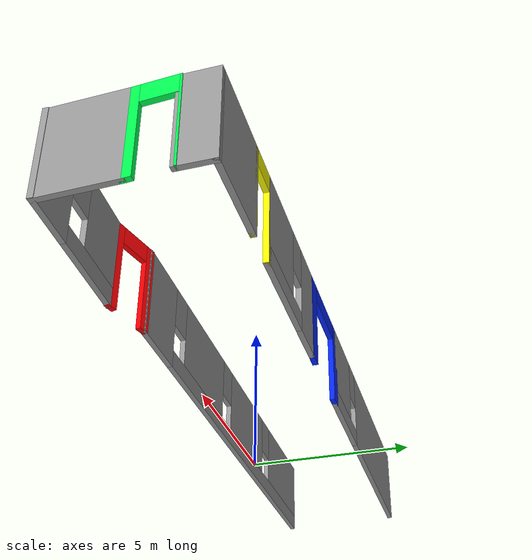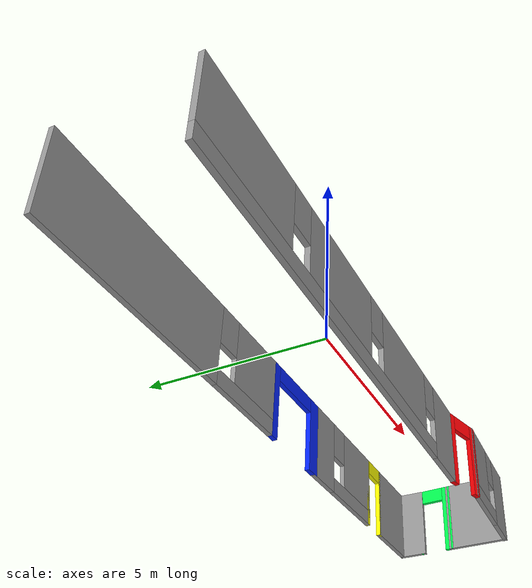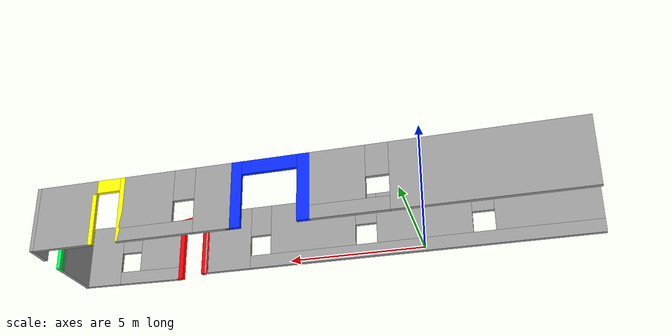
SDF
<?xml version='1.0'?>
<sdf version='1.6'>
  <model name='corridor_with_collored_doors'>
    <pose frame=''>3.80119 1.38394 0 0 -0 0</pose>
    <link name='Wall_24'>
      <pose frame=''>-5.09322 2.0503 0 0 -0 0</pose>
      <visual name='Wall_24_Visual_0'>
        <pose frame=''>-1.4449 0 1.25 0 -0 0</pose>
        <geometry>
          <box>
            <size>6.6102 0.15 2.5</size>
          </box>
        </geometry>
        <material>
          <script>
            <uri>file://media/materials/scripts/gazebo.material</uri>
            <name>Gazebo/Grey</name>
          </script>
          <ambient>1 1 1 1</ambient>
        </material>
      </visual>
      <collision name='Wall_24_Collision_0'>
        <geometry>
          <box>
            <size>6.6102 0.15 2.5</size>
          </box>
        </geometry>
        <pose frame=''>-1.4449 0 1.25 0 -0 0</pose>
      </collision>
      <visual name='Wall_24_Visual_1'>
        <pose frame=''>3.3051 0 0.25 0 -0 0</pose>
        <geometry>
          <box>
            <size>2.8898 0.15 0.5</size>
          </box>
        </geometry>
        <material>
          <script>
            <uri>file://media/materials/scripts/gazebo.material</uri>
            <name>Gazebo/Grey</name>
          </script>
          <ambient>1 1 1 1</ambient>
        </material>
      </visual>
      <collision name='Wall_24_Collision_1'>
        <geometry>
          <box>
            <size>2.8898 0.15 0.5</size>
          </box>
        </geometry>
        <pose frame=''>3.3051 0 0.25 0 -0 0</pose>
      </collision>
      <visual name='Wall_24_Visual_2'>
        <pose frame=''>3.7051 0 1.5 0 -0 0</pose>
        <geometry>
          <box>
            <size>2.0898 0.15 2</size>
          </box>
        </geometry>
        <material>
          <script>
            <uri>file://media/materials/scripts/gazebo.material</uri>
            <name>Gazebo/Grey</name>
          </script>
          <ambient>1 1 1 1</ambient>
        </material>
      </visual>
      <collision name='Wall_24_Collision_2'>
        <geometry>
          <box>
            <size>2.0898 0.15 2</size>
          </box>
        </geometry>
        <pose frame=''>3.7051 0 1.5 0 -0 0</pose>
      </collision>
      <visual name='Wall_24_Visual_3'>
        <pose frame=''>2.2602 0 1.9 0 -0 0</pose>
        <geometry>
          <box>
            <size>0.8 0.15 1.2</size>
          </box>
        </geometry>
        <material>
          <script>
            <uri>file://media/materials/scripts/gazebo.material</uri>
            <name>Gazebo/Grey</name>
          </script>
          <ambient>1 1 1 1</ambient>
        </material>
      </visual>
      <collision name='Wall_24_Collision_3'>
        <geometry>
          <box>
            <size>0.8 0.15 1.2</size>
          </box>
        </geometry>
        <pose frame=''>2.2602 0 1.9 0 -0 0</pose>
      </collision>
    </link>
    <link name='Wall_25'>
      <pose frame=''>0.995216 2.0503 0 0 -0 0</pose>
      <visual name='Wall_25_Visual_0'>
        <pose frame=''>-1.26541 0 1.25 0 -0 0</pose>
        <geometry>
          <box>
            <size>0.446054 0.15 2.5</size>
          </box>
        </geometry>
        <material>
          <script>
            <uri>file://media/materials/scripts/gazebo.material</uri>
            <name>Gazebo/Grey</name>
          </script>
          <ambient>0.0235294 0.152941 1 1</ambient>
        </material>
      </visual>
      <collision name='Wall_25_Collision_0'>
        <geometry>
          <box>
            <size>0.446054 0.15 2.5</size>
          </box>
        </geometry>
        <pose frame=''>-1.26541 0 1.25 0 -0 0</pose>
      </collision>
      <visual name='Wall_25_Visual_1'>
        <pose frame=''>1.22303 0 1.25 0 -0 0</pose>
        <geometry>
          <box>
            <size>0.530816 0.15 2.5</size>
          </box>
        </geometry>
        <material>
          <script>
            <uri>file://media/materials/scripts/gazebo.material</uri>
            <name>Gazebo/Grey</name>
          </script>
          <ambient>0.0235294 0.152941 1 1</ambient>
        </material>
      </visual>
      <collision name='Wall_25_Collision_1'>
        <geometry>
          <box>
            <size>0.530816 0.15 2.5</size>
          </box>
        </geometry>
        <pose frame=''>1.22303 0 1.25 0 -0 0</pose>
      </collision>
      <visual name='Wall_25_Visual_2'>
        <pose frame=''>-0.042381 0 2.25 0 -0 0</pose>
        <geometry>
          <box>
            <size>2 0.15 0.5</size>
          </box>
        </geometry>
        <material>
          <script>
            <uri>file://media/materials/scripts/gazebo.material</uri>
            <name>Gazebo/Grey</name>
          </script>
          <ambient>0.0235294 0.152941 1 1</ambient>
        </material>
      </visual>
      <collision name='Wall_25_Collision_2'>
        <geometry>
          <box>
            <size>2 0.15 0.5</size>
          </box>
        </geometry>
        <pose frame=''>-0.042381 0 2.25 0 -0 0</pose>
      </collision>
    </link>
    <link name='Wall_28'>
      <collision name='Wall_28_Collision'>
        <geometry>
          <box>
            <size>1 0.15 2.5</size>
          </box>
        </geometry>
        <pose frame=''>0 0 1.25 0 -0 0</pose>
      </collision>
      <visual name='Wall_28_Visual'>
        <pose frame=''>0 0 1.25 0 -0 0</pose>
        <geometry>
          <box>
            <size>1 0.15 2.5</size>
          </box>
        </geometry>
        <material>
          <script>
            <uri>file://media/materials/scripts/gazebo.material</uri>
            <name>Gazebo/Grey</name>
          </script>
          <ambient>1 1 1 1</ambient>
        </material>
      </visual>
      <pose frame=''>9.92201 1.6253 0 0 0 -1.5708</pose>
    </link>
    <link name='Wall_29'>
      <pose frame=''>9.91195 0.650305 0 0 0 -1.6256</pose>
      <visual name='Wall_29_Visual_0'>
        <pose frame=''>-0.597989 0 1.25 0 -0 0</pose>
        <geometry>
          <box>
            <size>0.055676 0.15 2.5</size>
          </box>
        </geometry>
        <material>
          <script>
            <uri>file://media/materials/scripts/gazebo.material</uri>
            <name>Gazebo/Grey</name>
          </script>
          <ambient>0 1 0.317647 1</ambient>
        </material>
      </visual>
      <collision name='Wall_29_Collision_0'>
        <geometry>
          <box>
            <size>0.055676 0.15 2.5</size>
          </box>
        </geometry>
        <pose frame=''>-0.597989 0 1.25 0 -0 0</pose>
      </collision>
      <visual name='Wall_29_Visual_1'>
        <pose frame=''>0.477838 0 1.25 0 -0 0</pose>
        <geometry>
          <box>
            <size>0.295978 0.15 2.5</size>
          </box>
        </geometry>
        <material>
          <script>
            <uri>file://media/materials/scripts/gazebo.material</uri>
            <name>Gazebo/Grey</name>
          </script>
          <ambient>0 1 0.317647 1</ambient>
        </material>
      </visual>
      <collision name='Wall_29_Collision_1'>
        <geometry>
          <box>
            <size>0.295978 0.15 2.5</size>
          </box>
        </geometry>
        <pose frame=''>0.477838 0 1.25 0 -0 0</pose>
      </collision>
      <visual name='Wall_29_Visual_2'>
        <pose frame=''>-0.120151 0 2.25 0 -0 0</pose>
        <geometry>
          <box>
            <size>0.9 0.15 0.5</size>
          </box>
        </geometry>
        <material>
          <script>
            <uri>file://media/materials/scripts/gazebo.material</uri>
            <name>Gazebo/Grey</name>
          </script>
          <ambient>0 1 0.317647 1</ambient>
        </material>
      </visual>
      <collision name='Wall_29_Collision_2'>
        <geometry>
          <box>
            <size>0.9 0.15 0.5</size>
          </box>
        </geometry>
        <pose frame=''>-0.120151 0 2.25 0 -0 0</pose>
      </collision>
    </link>
    <link name='Wall_30'>
      <collision name='Wall_30_Collision'>
        <geometry>
          <box>
            <size>2.13797 0.15 2.5</size>
          </box>
        </geometry>
        <pose frame=''>0 0 1.25 0 -0 0</pose>
      </collision>
      <visual name='Wall_30_Visual'>
        <pose frame=''>0 0 1.25 0 -0 0</pose>
        <geometry>
          <box>
            <size>2.13797 0.15 2.5</size>
          </box>
        </geometry>
        <material>
          <script>
            <uri>file://media/materials/scripts/gazebo.material</uri>
            <name>Gazebo/Grey</name>
          </script>
          <ambient>1 1 1 1</ambient>
        </material>
      </visual>
      <pose frame=''>9.85865 -0.893613 0 0 0 -1.59406</pose>
    </link>
    <link name='Wall_31'>
      <pose frame=''>7.91269 -1.96049 0 0 0 -3.10412</pose>
      <visual name='Wall_31_Visual_0'>
        <pose frame=''>-1.26145 0 1.25 0 -0 0</pose>
        <geometry>
          <box>
            <size>1.52175 0.15 2.5</size>
          </box>
        </geometry>
        <material>
          <script>
            <uri>file://media/materials/scripts/gazebo.material</uri>
            <name>Gazebo/Grey</name>
          </script>
          <ambient>1 1 1 1</ambient>
        </material>
      </visual>
      <collision name='Wall_31_Collision_0'>
        <geometry>
          <box>
            <size>1.52175 0.15 2.5</size>
          </box>
        </geometry>
        <pose frame=''>-1.26145 0 1.25 0 -0 0</pose>
      </collision>
      <visual name='Wall_31_Visual_1'>
        <pose frame=''>0.760874 0 0.25 0 -0 0</pose>
        <geometry>
          <box>
            <size>2.52291 0.15 0.5</size>
          </box>
        </geometry>
        <material>
          <script>
            <uri>file://media/materials/scripts/gazebo.material</uri>
            <name>Gazebo/Grey</name>
          </script>
          <ambient>1 1 1 1</ambient>
        </material>
      </visual>
      <collision name='Wall_31_Collision_1'>
        <geometry>
          <box>
            <size>2.52291 0.15 0.5</size>
          </box>
        </geometry>
        <pose frame=''>0.760874 0 0.25 0 -0 0</pose>
      </collision>
      <visual name='Wall_31_Visual_2'>
        <pose frame=''>1.16087 0 1.5 0 -0 0</pose>
        <geometry>
          <box>
            <size>1.7229 0.15 2</size>
          </box>
        </geometry>
        <material>
          <script>
            <uri>file://media/materials/scripts/gazebo.material</uri>
            <name>Gazebo/Grey</name>
          </script>
          <ambient>1 1 1 1</ambient>
        </material>
      </visual>
      <collision name='Wall_31_Collision_2'>
        <geometry>
          <box>
            <size>1.7229 0.15 2</size>
          </box>
        </geometry>
        <pose frame=''>1.16087 0 1.5 0 -0 0</pose>
      </collision>
      <visual name='Wall_31_Visual_3'>
        <pose frame=''>-0.100578 0 1.9 0 -0 0</pose>
        <geometry>
          <box>
            <size>0.8 0.15 1.2</size>
          </box>
        </geometry>
        <material>
          <script>
            <uri>file://media/materials/scripts/gazebo.material</uri>
            <name>Gazebo/Grey</name>
          </script>
          <ambient>1 1 1 1</ambient>
        </material>
      </visual>
      <collision name='Wall_31_Collision_3'>
        <geometry>
          <box>
            <size>0.8 0.15 1.2</size>
          </box>
        </geometry>
        <pose frame=''>-0.100578 0 1.9 0 -0 0</pose>
      </collision>
    </link>
    <link name='Wall_32'>
      <pose frame=''>5.31473 -1.85875 0 0 -0 2.87979</pose>
      <visual name='Wall_32_Visual_0'>
        <pose frame=''>-0.601317 0 1.25 0 -0 0</pose>
        <geometry>
          <box>
            <size>0.297366 0.15 2.5</size>
          </box>
        </geometry>
        <material>
          <script>
            <uri>file://media/materials/scripts/gazebo.material</uri>
            <name>Gazebo/Grey</name>
          </script>
          <ambient>1 0 0.0156863 1</ambient>
        </material>
      </visual>
      <collision name='Wall_32_Collision_0'>
        <geometry>
          <box>
            <size>0.297366 0.15 2.5</size>
          </box>
        </geometry>
        <pose frame=''>-0.601317 0 1.25 0 -0 0</pose>
      </collision>
      <visual name='Wall_32_Visual_1'>
        <pose frame=''>0.598683 0 1.25 0 -0 0</pose>
        <geometry>
          <box>
            <size>0.302634 0.15 2.5</size>
          </box>
        </geometry>
        <material>
          <script>
            <uri>file://media/materials/scripts/gazebo.material</uri>
            <name>Gazebo/Grey</name>
          </script>
          <ambient>1 0 0.0156863 1</ambient>
        </material>
      </visual>
      <collision name='Wall_32_Collision_1'>
        <geometry>
          <box>
            <size>0.302634 0.15 2.5</size>
          </box>
        </geometry>
        <pose frame=''>0.598683 0 1.25 0 -0 0</pose>
      </collision>
      <visual name='Wall_32_Visual_2'>
        <pose frame=''>-0.002634 0 2.25 0 -0 0</pose>
        <geometry>
          <box>
            <size>0.9 0.15 0.5</size>
          </box>
        </geometry>
        <material>
          <script>
            <uri>file://media/materials/scripts/gazebo.material</uri>
            <name>Gazebo/Grey</name>
          </script>
          <ambient>1 0 0.0156863 1</ambient>
        </material>
      </visual>
      <collision name='Wall_32_Collision_2'>
        <geometry>
          <box>
            <size>0.9 0.15 0.5</size>
          </box>
        </geometry>
        <pose frame=''>-0.002634 0 2.25 0 -0 0</pose>
      </collision>
    </link>
    <link name='Wall_33'>
      <pose frame=''>-2.64153 -1.7164 0 0 0 -3.13716</pose>
      <visual name='Wall_33_Visual_0'>
        <pose frame=''>-6.45911 0 1.25 0 -0 0</pose>
        <geometry>
          <box>
            <size>1.84045 0.15 2.5</size>
          </box>
        </geometry>
        <material>
          <script>
            <uri>file://media/materials/scripts/gazebo.material</uri>
            <name>Gazebo/Grey</name>
          </script>
          <ambient>1 1 1 1</ambient>
        </material>
      </visual>
      <collision name='Wall_33_Collision_0'>
        <geometry>
          <box>
            <size>1.84045 0.15 2.5</size>
          </box>
        </geometry>
        <pose frame=''>-6.45911 0 1.25 0 -0 0</pose>
      </collision>
      <visual name='Wall_33_Visual_1'>
        <pose frame=''>0.920224 0 0.25 0 -0 0</pose>
        <geometry>
          <box>
            <size>12.9182 0.15 0.5</size>
          </box>
        </geometry>
        <material>
          <script>
            <uri>file://media/materials/scripts/gazebo.material</uri>
            <name>Gazebo/Grey</name>
          </script>
          <ambient>1 1 1 1</ambient>
        </material>
      </visual>
      <collision name='Wall_33_Collision_1'>
        <geometry>
          <box>
            <size>12.9182 0.15 0.5</size>
          </box>
        </geometry>
        <pose frame=''>0.920224 0 0.25 0 -0 0</pose>
      </collision>
      <visual name='Wall_33_Visual_2'>
        <pose frame=''>-3.0871 0 1.5 0 -0 0</pose>
        <geometry>
          <box>
            <size>3.30357 0.15 2</size>
          </box>
        </geometry>
        <material>
          <script>
            <uri>file://media/materials/scripts/gazebo.material</uri>
            <name>Gazebo/Grey</name>
          </script>
          <ambient>1 1 1 1</ambient>
        </material>
      </visual>
      <collision name='Wall_33_Collision_2'>
        <geometry>
          <box>
            <size>3.30357 0.15 2</size>
          </box>
        </geometry>
        <pose frame=''>-3.0871 0 1.5 0 -0 0</pose>
      </collision>
      <visual name='Wall_33_Visual_3'>
        <pose frame=''>1.11705 0 1.5 0 -0 0</pose>
        <geometry>
          <box>
            <size>3.50471 0.15 2</size>
          </box>
        </geometry>
        <material>
          <script>
            <uri>file://media/materials/scripts/gazebo.material</uri>
            <name>Gazebo/Grey</name>
          </script>
          <ambient>1 1 1 1</ambient>
        </material>
      </visual>
      <collision name='Wall_33_Collision_3'>
        <geometry>
          <box>
            <size>3.50471 0.15 2</size>
          </box>
        </geometry>
        <pose frame=''>1.11705 0 1.5 0 -0 0</pose>
      </collision>
      <visual name='Wall_33_Visual_4'>
        <pose frame=''>5.52437 0 1.5 0 -0 0</pose>
        <geometry>
          <box>
            <size>3.70993 0.15 2</size>
          </box>
        </geometry>
        <material>
          <script>
            <uri>file://media/materials/scripts/gazebo.material</uri>
            <name>Gazebo/Grey</name>
          </script>
          <ambient>1 1 1 1</ambient>
        </material>
      </visual>
      <collision name='Wall_33_Collision_4'>
        <geometry>
          <box>
            <size>3.70993 0.15 2</size>
          </box>
        </geometry>
        <pose frame=''>5.52437 0 1.5 0 -0 0</pose>
      </collision>
      <visual name='Wall_33_Visual_5'>
        <pose frame=''>-5.13888 0 1.9 0 -0 0</pose>
        <geometry>
          <box>
            <size>0.8 0.15 1.2</size>
          </box>
        </geometry>
        <material>
          <script>
            <uri>file://media/materials/scripts/gazebo.material</uri>
            <name>Gazebo/Grey</name>
          </script>
          <ambient>1 1 1 1</ambient>
        </material>
      </visual>
      <collision name='Wall_33_Collision_5'>
        <geometry>
          <box>
            <size>0.8 0.15 1.2</size>
          </box>
        </geometry>
        <pose frame=''>-5.13888 0 1.9 0 -0 0</pose>
      </collision>
      <visual name='Wall_33_Visual_6'>
        <pose frame=''>-1.03531 0 1.9 0 -0 0</pose>
        <geometry>
          <box>
            <size>0.8 0.15 1.2</size>
          </box>
        </geometry>
        <material>
          <script>
            <uri>file://media/materials/scripts/gazebo.material</uri>
            <name>Gazebo/Grey</name>
          </script>
          <ambient>1 1 1 1</ambient>
        </material>
      </visual>
      <collision name='Wall_33_Collision_6'>
        <geometry>
          <box>
            <size>0.8 0.15 1.2</size>
          </box>
        </geometry>
        <pose frame=''>-1.03531 0 1.9 0 -0 0</pose>
      </collision>
      <visual name='Wall_33_Visual_7'>
        <pose frame=''>3.2694 0 1.9 0 -0 0</pose>
        <geometry>
          <box>
            <size>0.8 0.15 1.2</size>
          </box>
        </geometry>
        <material>
          <script>
            <uri>file://media/materials/scripts/gazebo.material</uri>
            <name>Gazebo/Grey</name>
          </script>
          <ambient>1 1 1 1</ambient>
        </material>
      </visual>
      <collision name='Wall_33_Collision_7'>
        <geometry>
          <box>
            <size>0.8 0.15 1.2</size>
          </box>
        </geometry>
        <pose frame=''>3.2694 0 1.9 0 -0 0</pose>
      </collision>
    </link>
    <link name='Wall_35'>
      <pose frame=''>4.45865 2.0503 0 0 -0 0</pose>
      <visual name='Wall_35_Visual_0'>
        <pose frame=''>-1.4488 0 1.25 0 -0 0</pose>
        <geometry>
          <box>
            <size>1.3524 0.15 2.5</size>
          </box>
        </geometry>
        <material>
          <script>
            <uri>file://media/materials/scripts/gazebo.material</uri>
            <name>Gazebo/Grey</name>
          </script>
          <ambient>1 1 1 1</ambient>
        </material>
      </visual>
      <collision name='Wall_35_Collision_0'>
        <geometry>
          <box>
            <size>1.3524 0.15 2.5</size>
          </box>
        </geometry>
        <pose frame=''>-1.4488 0 1.25 0 -0 0</pose>
      </collision>
      <visual name='Wall_35_Visual_1'>
        <pose frame=''>0.676199 0 0.25 0 -0 0</pose>
        <geometry>
          <box>
            <size>2.8976 0.15 0.5</size>
          </box>
        </geometry>
        <material>
          <script>
            <uri>file://media/materials/scripts/gazebo.material</uri>
            <name>Gazebo/Grey</name>
          </script>
          <ambient>1 1 1 1</ambient>
        </material>
      </visual>
      <collision name='Wall_35_Collision_1'>
        <geometry>
          <box>
            <size>2.8976 0.15 0.5</size>
          </box>
        </geometry>
        <pose frame=''>0.676199 0 0.25 0 -0 0</pose>
      </collision>
      <visual name='Wall_35_Visual_2'>
        <pose frame=''>1.0762 0 1.5 0 -0 0</pose>
        <geometry>
          <box>
            <size>2.0976 0.15 2</size>
          </box>
        </geometry>
        <material>
          <script>
            <uri>file://media/materials/scripts/gazebo.material</uri>
            <name>Gazebo/Grey</name>
          </script>
          <ambient>1 1 1 1</ambient>
        </material>
      </visual>
      <collision name='Wall_35_Collision_2'>
        <geometry>
          <box>
            <size>2.0976 0.15 2</size>
          </box>
        </geometry>
        <pose frame=''>1.0762 0 1.5 0 -0 0</pose>
      </collision>
      <visual name='Wall_35_Visual_3'>
        <pose frame=''>-0.372601 0 1.9 0 -0 0</pose>
        <geometry>
          <box>
            <size>0.8 0.15 1.2</size>
          </box>
        </geometry>
        <material>
          <script>
            <uri>file://media/materials/scripts/gazebo.material</uri>
            <name>Gazebo/Grey</name>
          </script>
          <ambient>1 1 1 1</ambient>
        </material>
      </visual>
      <collision name='Wall_35_Collision_3'>
        <geometry>
          <box>
            <size>0.8 0.15 1.2</size>
          </box>
        </geometry>
        <pose frame=''>-0.372601 0 1.9 0 -0 0</pose>
      </collision>
    </link>
    <link name='Wall_36'>
      <pose frame=''>7.05865 2.0503 0 0 -0 0</pose>
      <visual name='Wall_36_Visual_0'>
        <pose frame=''>-0.535396 0 1.25 0 -0 0</pose>
        <geometry>
          <box>
            <size>0.179209 0.15 2.5</size>
          </box>
        </geometry>
        <material>
          <script>
            <uri>file://media/materials/scripts/gazebo.material</uri>
            <name>Gazebo/Grey</name>
          </script>
          <ambient>1 1 0 1</ambient>
        </material>
      </visual>
      <collision name='Wall_36_Collision_0'>
        <geometry>
          <box>
            <size>0.179209 0.15 2.5</size>
          </box>
        </geometry>
        <pose frame=''>-0.535396 0 1.25 0 -0 0</pose>
      </collision>
      <visual name='Wall_36_Visual_1'>
        <pose frame=''>0.539604 0 1.25 0 -0 0</pose>
        <geometry>
          <box>
            <size>0.170791 0.15 2.5</size>
          </box>
        </geometry>
        <material>
          <script>
            <uri>file://media/materials/scripts/gazebo.material</uri>
            <name>Gazebo/Grey</name>
          </script>
          <ambient>1 1 0 1</ambient>
        </material>
      </visual>
      <collision name='Wall_36_Collision_1'>
        <geometry>
          <box>
            <size>0.170791 0.15 2.5</size>
          </box>
        </geometry>
        <pose frame=''>0.539604 0 1.25 0 -0 0</pose>
      </collision>
      <visual name='Wall_36_Visual_2'>
        <pose frame=''>0.004209 0 2.25 0 -0 0</pose>
        <geometry>
          <box>
            <size>0.9 0.15 0.5</size>
          </box>
        </geometry>
        <material>
          <script>
            <uri>file://media/materials/scripts/gazebo.material</uri>
            <name>Gazebo/Grey</name>
          </script>
          <ambient>1 1 0 1</ambient>
        </material>
      </visual>
      <collision name='Wall_36_Collision_2'>
        <geometry>
          <box>
            <size>0.9 0.15 0.5</size>
          </box>
        </geometry>
        <pose frame=''>0.004209 0 2.25 0 -0 0</pose>
      </collision>
    </link>
    <link name='Wall_37'>
      <collision name='Wall_37_Collision'>
        <geometry>
          <box>
            <size>2.46336 0.15 2.5</size>
          </box>
        </geometry>
        <pose frame=''>0 0 1.25 0 -0 0</pose>
      </collision>
      <visual name='Wall_37_Visual'>
        <pose frame=''>0 0 1.25 0 -0 0</pose>
        <geometry>
          <box>
            <size>2.46336 0.15 2.5</size>
          </box>
        </geometry>
        <material>
          <script>
            <uri>file://media/materials/scripts/gazebo.material</uri>
            <name>Gazebo/Grey</name>
          </script>
          <ambient>1 1 1 1</ambient>
        </material>
      </visual>
      <pose frame=''>8.76533 2.0503 0 0 -0 0</pose>
    </link>
    <static>1</static>
  </model>
</sdf>
